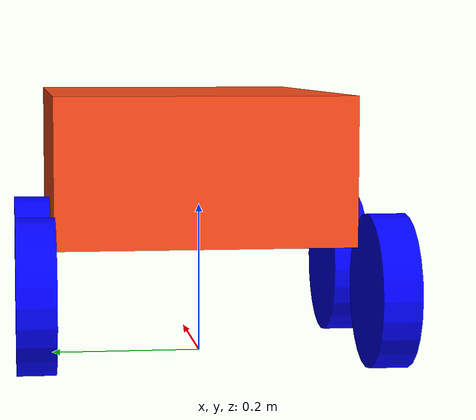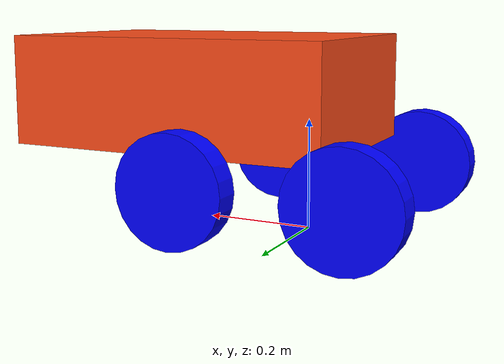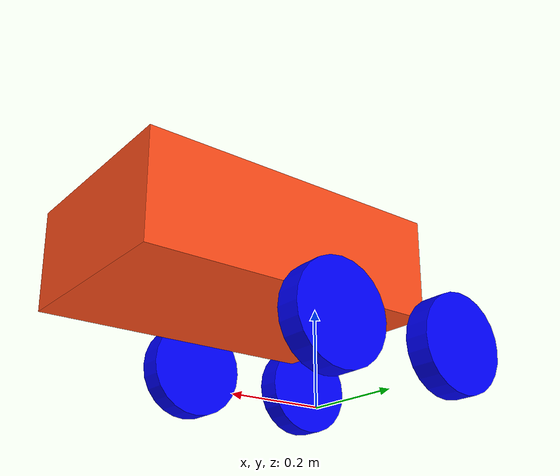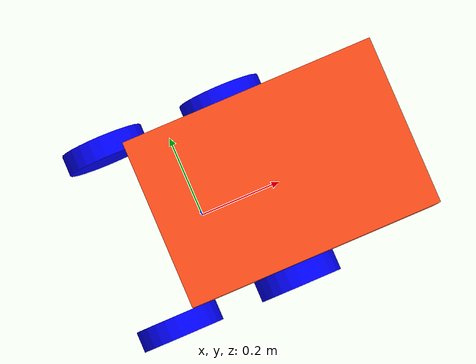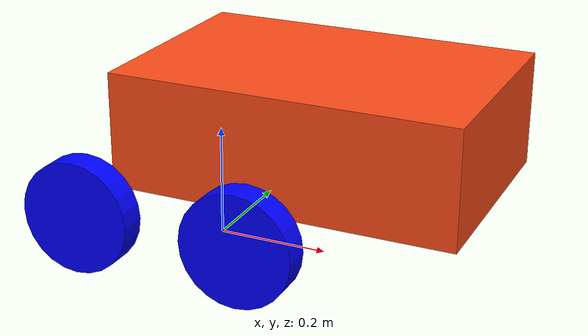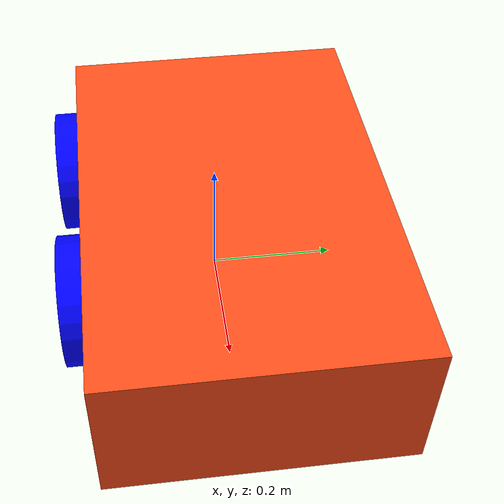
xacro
<?xml version="1.0"?>
<robot xmlns:xacro="http://www.ros.org/wiki/xacro">

    <xacro:property name="chassis_length" value="0.6"/>
    <xacro:property name="chassis_width" value="0.4"/>
    <xacro:property name="chassis_height" value="0.2"/>
    <xacro:property name="chassis_mass" value="5.0"/>

    <xacro:property name="wheel_radius" value="0.1"/>
    <xacro:property name="wheel_length" value="0.05"/>
    <xacro:property name="wheel_mass" value="1.0"/>

    <material name="white"><color rgba="1 1 1 1"/></material>
    <material name="orange"><color rgba="1 0.3 0.1 1"/></material>
    <material name="blue"><color rgba="0 0 1 1"/></material>
    <material name="black"><color rgba="0 0 0 1"/></material>

    <link name="base_footprint"/>

    <joint name="base_footprint_joint" type="fixed">
        <parent link="base_footprint"/>
        <child link="base_link"/>
        <origin xyz="0 0 0.15" rpy="0 0 0"/>
    </joint>

    <link name="base_link"></link>

    <link name="chassis">
        <visual>
            <origin xyz="${chassis_length/2} 0 ${chassis_height/2}"/>
            <geometry>
                <box size="${chassis_length} ${chassis_width} ${chassis_height}"/>
            </geometry>
            <material name="orange"/>
        </visual>
        <collision>
            <origin xyz="${chassis_length/2} 0 ${chassis_height/2}"/>
            <geometry>
                <box size="${chassis_length} ${chassis_width} ${chassis_height}"/>
            </geometry>
        </collision>
        <inertial>
            <origin xyz="${chassis_length/2} 0 ${chassis_height/2}"/>
            <mass value="${chassis_mass}"/>
            <inertia ixx="0.0833" ixy="0.0" ixz="0.0" iyy="0.1667" iyz="0.0" izz="0.2167"/>
        </inertial>
    </link>

    <link name="front_left_wheel">
        <visual>
            <geometry>
                <cylinder radius="${wheel_radius}" length="${wheel_length}"/>
            </geometry>
            <material name="blue"/>
        </visual>
        <collision>
            <geometry>
                <cylinder radius="${wheel_radius}" length="${wheel_length}"/>
            </geometry>
        </collision>
        <inertial>
            <mass value="${wheel_mass}"/>
            <inertia ixx="0.0027" ixy="0.0" ixz="0.0" iyy="0.0027" iyz="0.0" izz="0.005"/>
        </inertial>
    </link>

    <link name="front_right_wheel">
        <visual>
            <geometry>
                <cylinder radius="${wheel_radius}" length="${wheel_length}"/>
            </geometry>
            <material name="blue"/>
        </visual>
        <collision>
            <geometry>
                <cylinder radius="${wheel_radius}" length="${wheel_length}"/>
            </geometry>
        </collision>
        <inertial>
            <mass value="${wheel_mass}"/>
            <inertia ixx="0.0027" ixy="0.0" ixz="0.0" iyy="0.0027" iyz="0.0" izz="0.005"/>
        </inertial>
    </link>

    <link name="rear_left_wheel">
        <visual>
            <geometry>
                <cylinder radius="${wheel_radius}" length="${wheel_length}"/>
            </geometry>
            <material name="blue"/>
        </visual>
        <collision>
            <geometry>
                <cylinder radius="${wheel_radius}" length="${wheel_length}"/>
            </geometry>
        </collision>
        <inertial>
            <mass value="${wheel_mass}"/>
            <inertia ixx="0.0027" ixy="0.0" ixz="0.0" iyy="0.0027" iyz="0.0" izz="0.005"/>
        </inertial>
    </link>

    <link name="rear_right_wheel">
        <visual>
            <geometry>
                <cylinder radius="${wheel_radius}" length="${wheel_length}"/>
            </geometry>
            <material name="blue"/>
        </visual>
        <collision>
            <geometry>
                <cylinder radius="${wheel_radius}" length="${wheel_length}"/>
            </geometry>
        </collision>
        <inertial>
            <mass value="${wheel_mass}"/>
            <inertia ixx="0.0027" ixy="0.0" ixz="0.0" iyy="0.0027" iyz="0.0" izz="0.005"/>
        </inertial>
    </link>

    <joint name="chassis_joint" type="fixed">
        <parent link="base_link"/>
        <child link="chassis"/>
        <origin xyz="-0.1 0 0"/>
    </joint>

    <joint name="front_left_wheel_joint" type="continuous">
        <parent link="base_link"/>
        <child link="front_left_wheel"/>
        <origin xyz="0.15 0.225 -0.05" rpy="-1.5708 0 0"/>
        <axis xyz="0 0 1"/>
    </joint>

    <joint name="front_right_wheel_joint" type="continuous">
        <parent link="base_link"/>
        <child link="front_right_wheel"/>
        <origin xyz="0.15 -0.225 -0.05" rpy="-1.5708 0 0"/>
        <axis xyz="0 0 1"/> </joint>

    <joint name="rear_left_wheel_joint" type="continuous">
        <parent link="base_link"/>
        <child link="rear_left_wheel"/>
        <origin xyz="-0.15 0.225 -0.05" rpy="-1.5708 0 0"/>
        <axis xyz="0 0 1"/>
    </joint>

    <joint name="rear_right_wheel_joint" type="continuous">
        <parent link="base_link"/>
        <child link="rear_right_wheel"/>
        <origin xyz="-0.15 -0.225 -0.05" rpy="-1.5708 0 0"/>
        <axis xyz="0 0 1"/>
    </joint>

    <gazebo reference="front_left_wheel"><mu1>1.0</mu1><mu2>1.0</mu2><kp>1000000.0</kp><kd>100.0</kd></gazebo>
    <gazebo reference="front_right_wheel"><mu1>1.0</mu1><mu2>1.0</mu2><kp>1000000.0</kp><kd>100.0</kd></gazebo>
    <gazebo reference="rear_left_wheel"><mu1>1.0</mu1><mu2>1.0</mu2><kp>1000000.0</kp><kd>100.0</kd></gazebo>
    <gazebo reference="rear_right_wheel"><mu1>1.0</mu1><mu2>1.0</mu2><kp>1000000.0</kp><kd>100.0</kd></gazebo>

    <gazebo>
        <plugin name="gazebo_ros_joint_state_publisher" filename="libgazebo_ros_joint_state_publisher.so">
            <update_rate>30</update_rate>
            <joint_name>chassis_joint</joint_name>
        </plugin>

       <plugin name="diff_drive_controller" filename="libgazebo_ros_diff_drive.so">
            <invert_input>false</invert_input>
            <legacy_mode>false</legacy_mode>
            <num_wheel_pairs>2</num_wheel_pairs>

            <left_joint>front_left_wheel_joint</left_joint>
            <left_joint>rear_left_wheel_joint</left_joint>

            <right_joint>front_right_wheel_joint</right_joint>
            <right_joint>rear_right_wheel_joint</right_joint>

            <wheel_separation>0.45</wheel_separation>
            <wheel_diameter>${wheel_radius * 2}</wheel_diameter>
            <max_wheel_torque>20</max_wheel_torque>
            <max_wheel_acceleration>1.0</max_wheel_acceleration>

            <odometry_frame>odom</odometry_frame>
            <robot_base_frame>base_footprint</robot_base_frame>

            <publish_odom>true</publish_odom>
            <publish_odom_tf>true</publish_odom_tf>
            <publish_wheel_tf>true</publish_wheel_tf>
        </plugin>
    </gazebo>

</robot>
